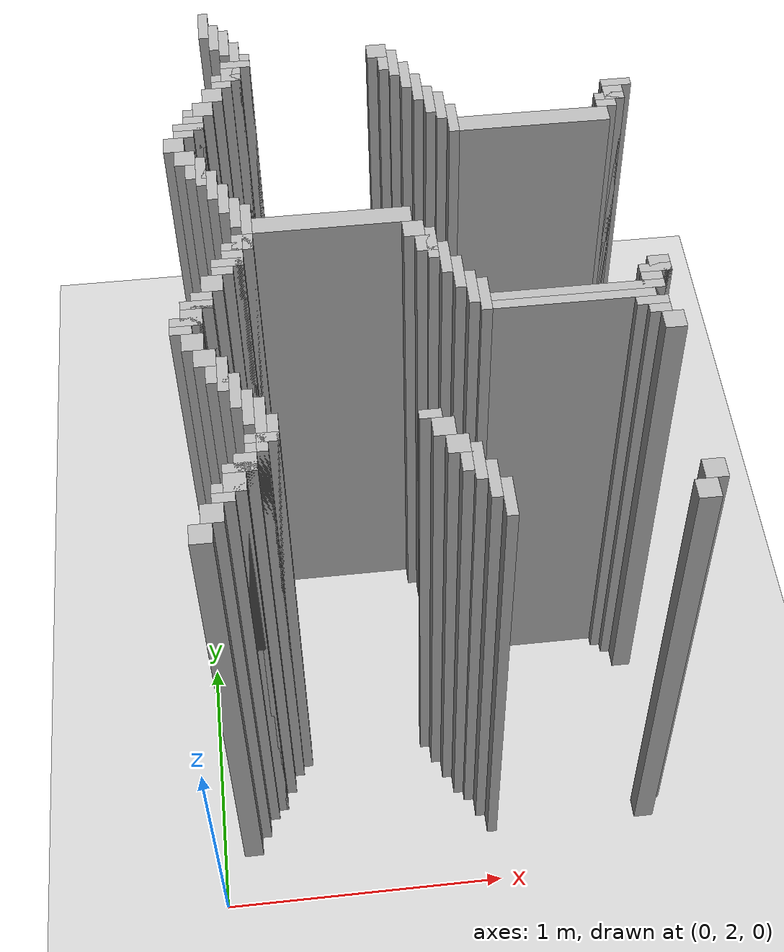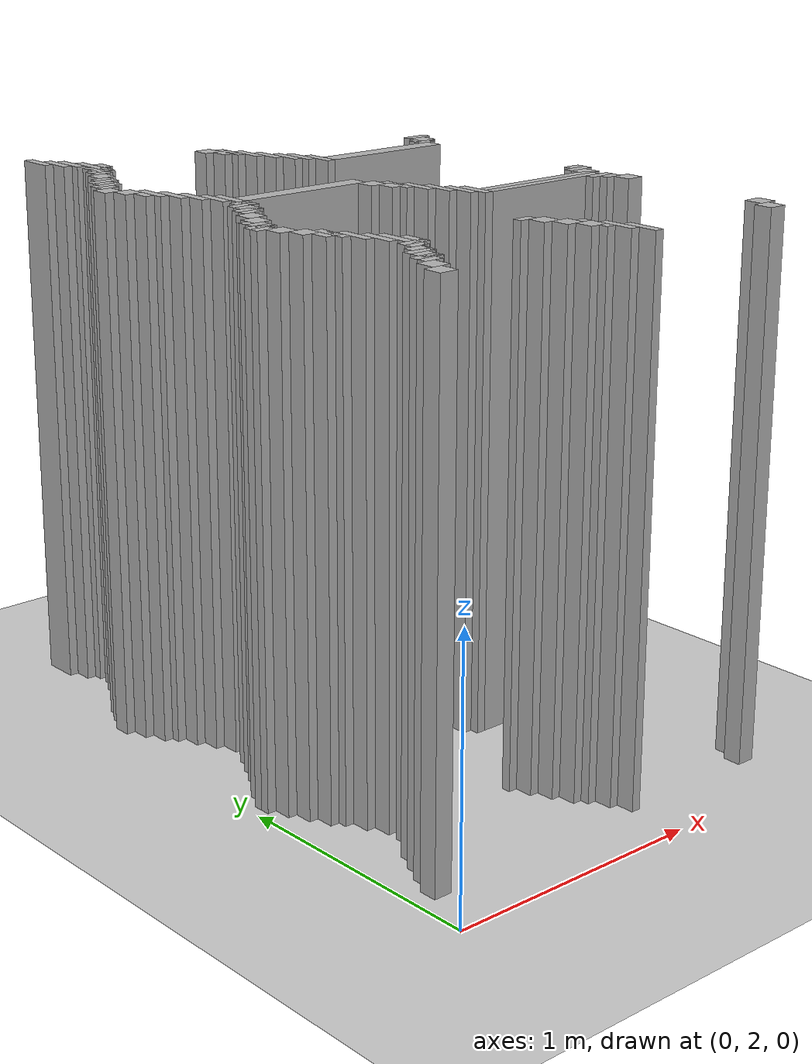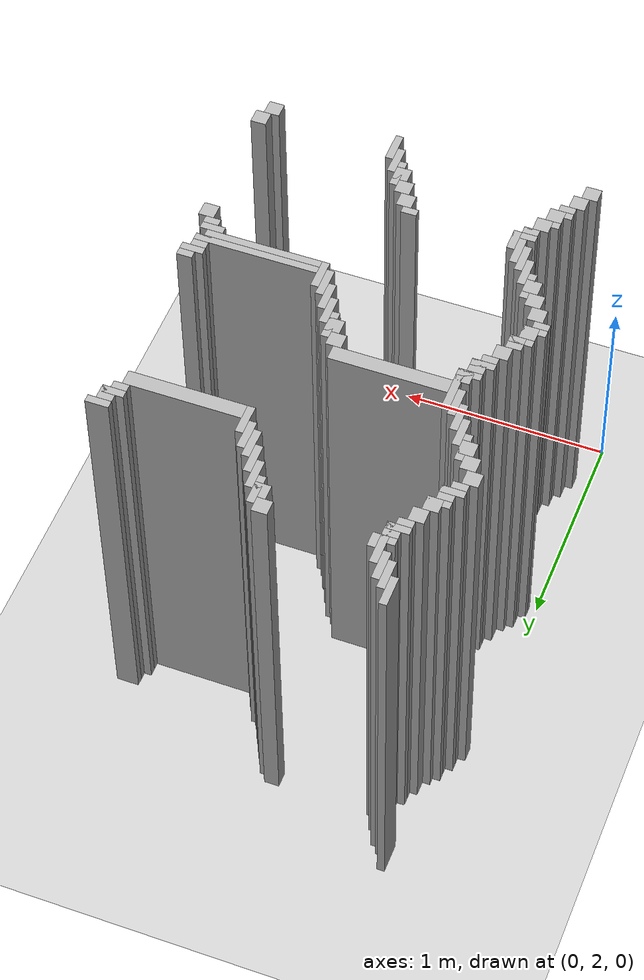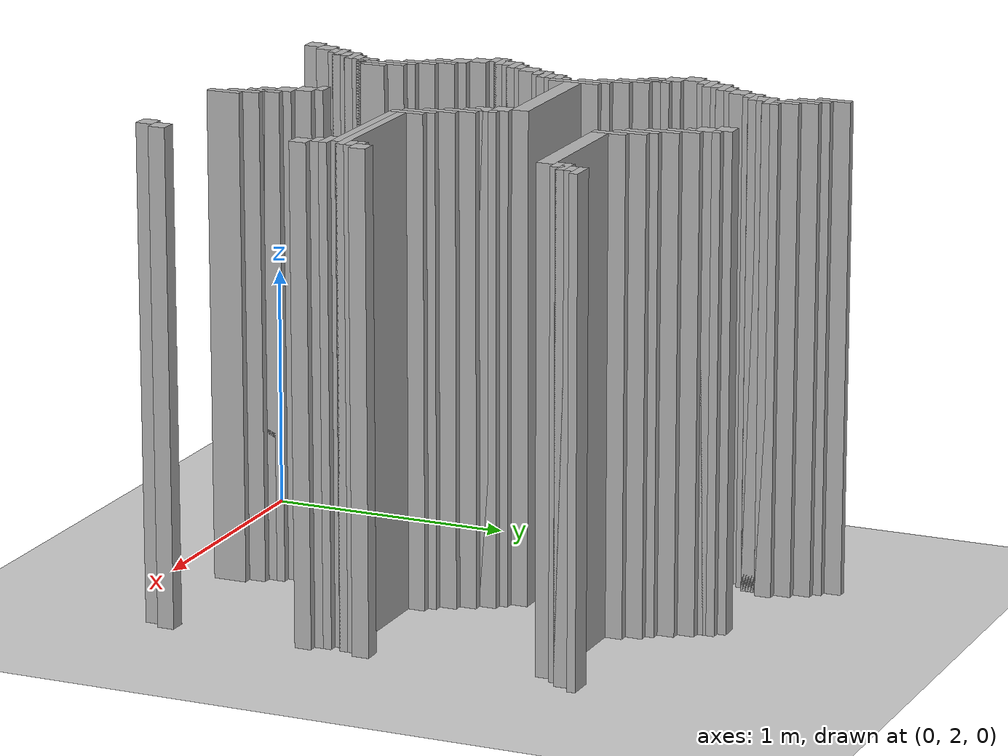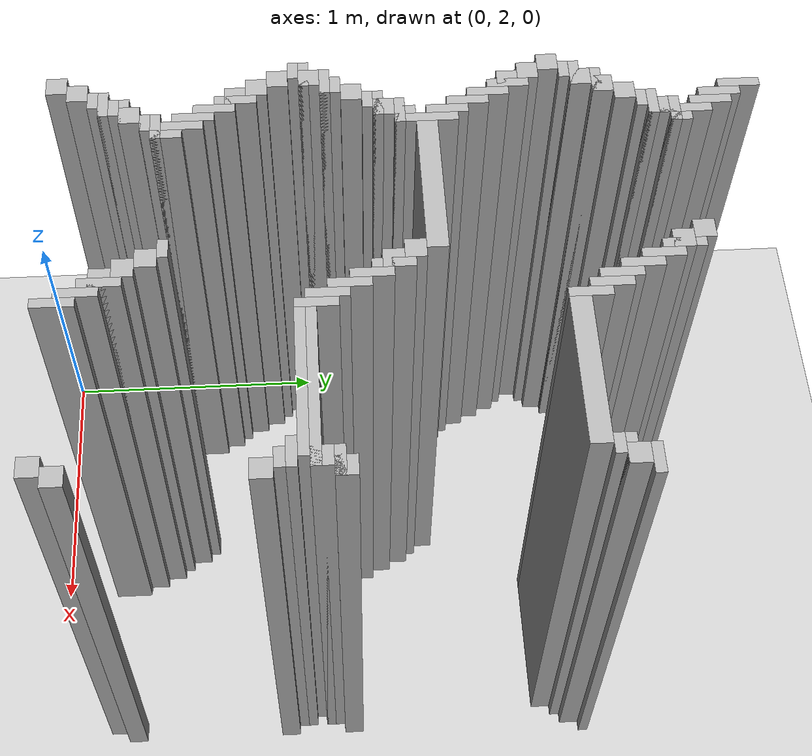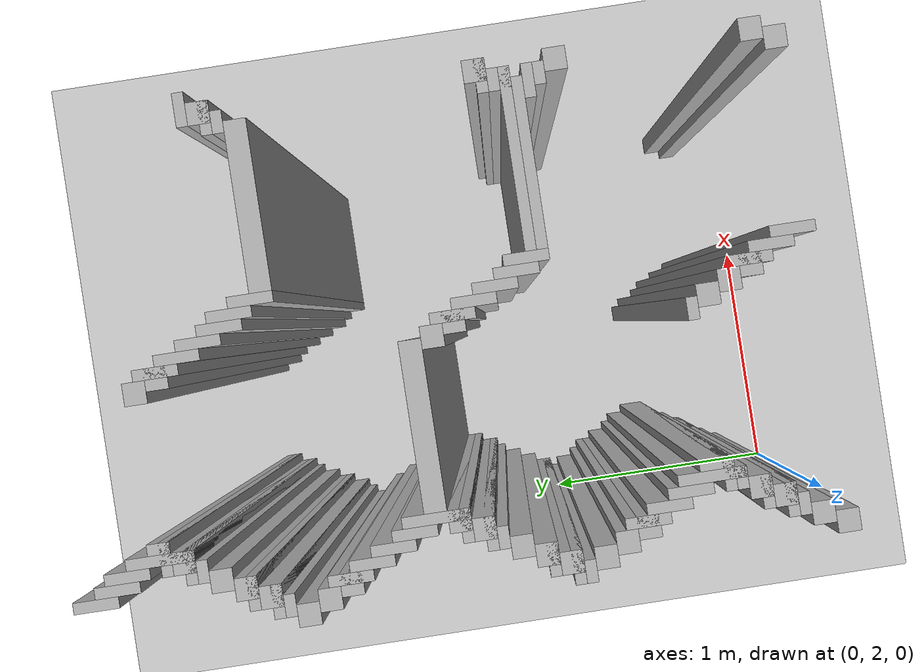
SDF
<sdf version="1.6">
 <world name="slam_world">
  <model name="ground_plane">
   <static>true</static>
   <link name="link">
    <collision name="collision">
     <geometry><plane><normal>0 0 1</normal><size>100 100</size></plane></geometry>
    </collision>
    <visual name="visual">
     <geometry><plane><normal>0 0 1</normal><size>100 100</size></plane></geometry>
     <material>
      <ambient>0.8 0.8 0.8 1</ambient>
      <diffuse>0.8 0.8 0.8 1</diffuse>
      <specular>0.8 0.8 0.8 1</specular>
     </material>
    </visual>
   </link>
  </model>
  <model name="wall_4281">
   <static>true</static>
   <pose>0.191415313225058 4.489559164733178 1.0 0 0 0</pose>
   <link name="link">
    <collision name="collision">
     <geometry><box><size>0.03480278422273782 0.13921113689095127 2.0</size></box></geometry>
    </collision>
    <visual name="visual">
     <geometry><box><size>0.03480278422273782 0.13921113689095127 2.0</size></box></geometry>
     <material><ambient>0.5 0.5 0.5 1</ambient><diffuse>0.7 0.7 0.7 1</diffuse></material>
    </visual>
   </link>
  </model>
  <model name="wall_4292">
   <static>true</static>
   <pose>0.2262180974477958 4.419953596287703 1.0 0 0 0</pose>
   <link name="link">
    <collision name="collision">
     <geometry><box><size>0.03480278422273782 0.13921113689095127 2.0</size></box></geometry>
    </collision>
    <visual name="visual">
     <geometry><box><size>0.03480278422273782 0.13921113689095127 2.0</size></box></geometry>
     <material><ambient>0.5 0.5 0.5 1</ambient><diffuse>0.7 0.7 0.7 1</diffuse></material>
    </visual>
   </link>
  </model>
  <model name="wall_4303">
   <static>true</static>
   <pose>0.2610208816705336 4.385150812064965 1.0 0 0 0</pose>
   <link name="link">
    <collision name="collision">
     <geometry><box><size>0.03480278422273782 0.13921113689095127 2.0</size></box></geometry>
    </collision>
    <visual name="visual">
     <geometry><box><size>0.03480278422273782 0.13921113689095127 2.0</size></box></geometry>
     <material><ambient>0.5 0.5 0.5 1</ambient><diffuse>0.7 0.7 0.7 1</diffuse></material>
    </visual>
   </link>
  </model>
  <model name="wall_4318">
   <static>true</static>
   <pose>0.29582366589327147 4.280742459396752 1.0 0 0 0</pose>
   <link name="link">
    <collision name="collision">
     <geometry><box><size>0.03480278422273782 0.2088167053364269 2.0</size></box></geometry>
    </collision>
    <visual name="visual">
     <geometry><box><size>0.03480278422273782 0.2088167053364269 2.0</size></box></geometry>
     <material><ambient>0.5 0.5 0.5 1</ambient><diffuse>0.7 0.7 0.7 1</diffuse></material>
    </visual>
   </link>
  </model>
  <model name="wall_4333">
   <static>true</static>
   <pose>0.3306264501160093 4.280742459396752 1.0 0 0 0</pose>
   <link name="link">
    <collision name="collision">
     <geometry><box><size>0.03480278422273782 0.06960556844547564 2.0</size></box></geometry>
    </collision>
    <visual name="visual">
     <geometry><box><size>0.03480278422273782 0.06960556844547564 2.0</size></box></geometry>
     <material><ambient>0.5 0.5 0.5 1</ambient><diffuse>0.7 0.7 0.7 1</diffuse></material>
    </visual>
   </link>
  </model>
  <model name="wall_4334">
   <static>true</static>
   <pose>0.8004640371229698 4.280742459396752 1.0 0 0 0</pose>
   <link name="link">
    <collision name="collision">
     <geometry><box><size>0.06960556844547564 0.06960556844547564 2.0</size></box></geometry>
    </collision>
    <visual name="visual">
     <geometry><box><size>0.06960556844547564 0.06960556844547564 2.0</size></box></geometry>
     <material><ambient>0.5 0.5 0.5 1</ambient><diffuse>0.7 0.7 0.7 1</diffuse></material>
    </visual>
   </link>
  </model>
  <model name="wall_4345">
   <static>true</static>
   <pose>0.29582366589327147 4.263341067285383 1.0 0 0 0</pose>
   <link name="link">
    <collision name="collision">
     <geometry><box><size>0.10440835266821345 0.03480278422273782 2.0</size></box></geometry>
    </collision>
    <visual name="visual">
     <geometry><box><size>0.10440835266821345 0.03480278422273782 2.0</size></box></geometry>
     <material><ambient>0.5 0.5 0.5 1</ambient><diffuse>0.7 0.7 0.7 1</diffuse></material>
    </visual>
   </link>
  </model>
  <model name="wall_4346">
   <static>true</static>
   <pose>0.8526682134570766 4.211136890951276 1.0 0 0 0</pose>
   <link name="link">
    <collision name="collision">
     <geometry><box><size>0.03480278422273782 0.13921113689095127 2.0</size></box></geometry>
    </collision>
    <visual name="visual">
     <geometry><box><size>0.03480278422273782 0.13921113689095127 2.0</size></box></geometry>
     <material><ambient>0.5 0.5 0.5 1</ambient><diffuse>0.7 0.7 0.7 1</diffuse></material>
    </visual>
   </link>
  </model>
  <model name="wall_4357">
   <static>true</static>
   <pose>0.27842227378190254 4.211136890951276 1.0 0 0 0</pose>
   <link name="link">
    <collision name="collision">
     <geometry><box><size>0.06960556844547564 0.06960556844547564 2.0</size></box></geometry>
    </collision>
    <visual name="visual">
     <geometry><box><size>0.06960556844547564 0.06960556844547564 2.0</size></box></geometry>
     <material><ambient>0.5 0.5 0.5 1</ambient><diffuse>0.7 0.7 0.7 1</diffuse></material>
    </visual>
   </link>
  </model>
  <model name="wall_4358">
   <static>true</static>
   <pose>0.8352668213457076 4.211136890951276 1.0 0 0 0</pose>
   <link name="link">
    <collision name="collision">
     <geometry><box><size>0.06960556844547564 0.06960556844547564 2.0</size></box></geometry>
    </collision>
    <visual name="visual">
     <geometry><box><size>0.06960556844547564 0.06960556844547564 2.0</size></box></geometry>
     <material><ambient>0.5 0.5 0.5 1</ambient><diffuse>0.7 0.7 0.7 1</diffuse></material>
    </visual>
   </link>
  </model>
  <model name="wall_4373">
   <static>true</static>
   <pose>0.2610208816705336 4.193735498839907 1.0 0 0 0</pose>
   <link name="link">
    <collision name="collision">
     <geometry><box><size>0.10440835266821345 0.03480278422273782 2.0</size></box></geometry>
    </collision>
    <visual name="visual">
     <geometry><box><size>0.10440835266821345 0.03480278422273782 2.0</size></box></geometry>
     <material><ambient>0.5 0.5 0.5 1</ambient><diffuse>0.7 0.7 0.7 1</diffuse></material>
    </visual>
   </link>
  </model>
  <model name="wall_4374">
   <static>true</static>
   <pose>0.8874709976798143 4.1415313225058 1.0 0 0 0</pose>
   <link name="link">
    <collision name="collision">
     <geometry><box><size>0.03480278422273782 0.13921113689095127 2.0</size></box></geometry>
    </collision>
    <visual name="visual">
     <geometry><box><size>0.03480278422273782 0.13921113689095127 2.0</size></box></geometry>
     <material><ambient>0.5 0.5 0.5 1</ambient><diffuse>0.7 0.7 0.7 1</diffuse></material>
    </visual>
   </link>
  </model>
  <model name="wall_4389">
   <static>true</static>
   <pose>0.24361948955916474 4.158932714617169 1.0 0 0 0</pose>
   <link name="link">
    <collision name="collision">
     <geometry><box><size>0.06960556844547564 0.03480278422273782 2.0</size></box></geometry>
    </collision>
    <visual name="visual">
     <geometry><box><size>0.06960556844547564 0.03480278422273782 2.0</size></box></geometry>
     <material><ambient>0.5 0.5 0.5 1</ambient><diffuse>0.7 0.7 0.7 1</diffuse></material>
    </visual>
   </link>
  </model>
  <model name="wall_4402">
   <static>true</static>
   <pose>0.2088167053364269 4.106728538283062 1.0 0 0 0</pose>
   <link name="link">
    <collision name="collision">
     <geometry><box><size>0.06960556844547564 0.06960556844547564 2.0</size></box></geometry>
    </collision>
    <visual name="visual">
     <geometry><box><size>0.06960556844547564 0.06960556844547564 2.0</size></box></geometry>
     <material><ambient>0.5 0.5 0.5 1</ambient><diffuse>0.7 0.7 0.7 1</diffuse></material>
    </visual>
   </link>
  </model>
  <model name="wall_4403">
   <static>true</static>
   <pose>0.9222737819025522 4.071925754060325 1.0 0 0 0</pose>
   <link name="link">
    <collision name="collision">
     <geometry><box><size>0.03480278422273782 0.13921113689095127 2.0</size></box></geometry>
    </collision>
    <visual name="visual">
     <geometry><box><size>0.03480278422273782 0.13921113689095127 2.0</size></box></geometry>
     <material><ambient>0.5 0.5 0.5 1</ambient><diffuse>0.7 0.7 0.7 1</diffuse></material>
    </visual>
   </link>
  </model>
  <model name="wall_4418">
   <static>true</static>
   <pose>0.17401392111368907 4.037122969837587 1.0 0 0 0</pose>
   <link name="link">
    <collision name="collision">
     <geometry><box><size>0.06960556844547564 0.06960556844547564 2.0</size></box></geometry>
    </collision>
    <visual name="visual">
     <geometry><box><size>0.06960556844547564 0.06960556844547564 2.0</size></box></geometry>
     <material><ambient>0.5 0.5 0.5 1</ambient><diffuse>0.7 0.7 0.7 1</diffuse></material>
    </visual>
   </link>
  </model>
  <model name="wall_4419">
   <static>true</static>
   <pose>0.95707656612529 4.002320185614849 1.0 0 0 0</pose>
   <link name="link">
    <collision name="collision">
     <geometry><box><size>0.03480278422273782 0.13921113689095127 2.0</size></box></geometry>
    </collision>
    <visual name="visual">
     <geometry><box><size>0.03480278422273782 0.13921113689095127 2.0</size></box></geometry>
     <material><ambient>0.5 0.5 0.5 1</ambient><diffuse>0.7 0.7 0.7 1</diffuse></material>
    </visual>
   </link>
  </model>
  <model name="wall_4434">
   <static>true</static>
   <pose>0.15661252900232017 4.019721577726218 1.0 0 0 0</pose>
   <link name="link">
    <collision name="collision">
     <geometry><box><size>0.10440835266821345 0.03480278422273782 2.0</size></box></geometry>
    </collision>
    <visual name="visual">
     <geometry><box><size>0.10440835266821345 0.03480278422273782 2.0</size></box></geometry>
     <material><ambient>0.5 0.5 0.5 1</ambient><diffuse>0.7 0.7 0.7 1</diffuse></material>
    </visual>
   </link>
  </model>
  <model name="wall_4435">
   <static>true</static>
   <pose>0.9918793503480278 3.967517401392111 1.0 0 0 0</pose>
   <link name="link">
    <collision name="collision">
     <geometry><box><size>0.03480278422273782 0.13921113689095127 2.0</size></box></geometry>
    </collision>
    <visual name="visual">
     <geometry><box><size>0.03480278422273782 0.13921113689095127 2.0</size></box></geometry>
     <material><ambient>0.5 0.5 0.5 1</ambient><diffuse>0.7 0.7 0.7 1</diffuse></material>
    </visual>
   </link>
  </model>
  <model name="wall_4436">
   <static>true</static>
   <pose>1.6183294663573085 4.019721577726218 1.0 0 0 0</pose>
   <link name="link">
    <collision name="collision">
     <geometry><box><size>0.10440835266821345 0.03480278422273782 2.0</size></box></geometry>
    </collision>
    <visual name="visual">
     <geometry><box><size>0.10440835266821345 0.03480278422273782 2.0</size></box></geometry>
     <material><ambient>0.5 0.5 0.5 1</ambient><diffuse>0.7 0.7 0.7 1</diffuse></material>
    </visual>
   </link>
  </model>
  <model name="wall_4450">
   <static>true</static>
   <pose>0.13921113689095127 3.967517401392111 1.0 0 0 0</pose>
   <link name="link">
    <collision name="collision">
     <geometry><box><size>0.06960556844547564 0.06960556844547564 2.0</size></box></geometry>
    </collision>
    <visual name="visual">
     <geometry><box><size>0.06960556844547564 0.06960556844547564 2.0</size></box></geometry>
     <material><ambient>0.5 0.5 0.5 1</ambient><diffuse>0.7 0.7 0.7 1</diffuse></material>
    </visual>
   </link>
  </model>
  <model name="wall_4451">
   <static>true</static>
   <pose>1.6009280742459395 3.967517401392111 1.0 0 0 0</pose>
   <link name="link">
    <collision name="collision">
     <geometry><box><size>0.06960556844547564 0.06960556844547564 2.0</size></box></geometry>
    </collision>
    <visual name="visual">
     <geometry><box><size>0.06960556844547564 0.06960556844547564 2.0</size></box></geometry>
     <material><ambient>0.5 0.5 0.5 1</ambient><diffuse>0.7 0.7 0.7 1</diffuse></material>
    </visual>
   </link>
  </model>
  <model name="wall_4459">
   <static>true</static>
   <pose>0.12180974477958237 3.9501160092807424 1.0 0 0 0</pose>
   <link name="link">
    <collision name="collision">
     <geometry><box><size>0.10440835266821345 0.03480278422273782 2.0</size></box></geometry>
    </collision>
    <visual name="visual">
     <geometry><box><size>0.10440835266821345 0.03480278422273782 2.0</size></box></geometry>
     <material><ambient>0.5 0.5 0.5 1</ambient><diffuse>0.7 0.7 0.7 1</diffuse></material>
    </visual>
   </link>
  </model>
  <model name="wall_4460">
   <static>true</static>
   <pose>1.0266821345707655 3.897911832946636 1.0 0 0 0</pose>
   <link name="link">
    <collision name="collision">
     <geometry><box><size>0.03480278422273782 0.13921113689095127 2.0</size></box></geometry>
    </collision>
    <visual name="visual">
     <geometry><box><size>0.03480278422273782 0.13921113689095127 2.0</size></box></geometry>
     <material><ambient>0.5 0.5 0.5 1</ambient><diffuse>0.7 0.7 0.7 1</diffuse></material>
    </visual>
   </link>
  </model>
  <model name="wall_4461">
   <static>true</static>
   <pose>1.5835266821345706 3.9501160092807424 1.0 0 0 0</pose>
   <link name="link">
    <collision name="collision">
     <geometry><box><size>0.10440835266821345 0.03480278422273782 2.0</size></box></geometry>
    </collision>
    <visual name="visual">
     <geometry><box><size>0.10440835266821345 0.03480278422273782 2.0</size></box></geometry>
     <material><ambient>0.5 0.5 0.5 1</ambient><diffuse>0.7 0.7 0.7 1</diffuse></material>
    </visual>
   </link>
  </model>
  <model name="wall_4475">
   <static>true</static>
   <pose>0.10440835266821345 3.9153132250580045 1.0 0 0 0</pose>
   <link name="link">
    <collision name="collision">
     <geometry><box><size>0.06960556844547564 0.03480278422273782 2.0</size></box></geometry>
    </collision>
    <visual name="visual">
     <geometry><box><size>0.06960556844547564 0.03480278422273782 2.0</size></box></geometry>
     <material><ambient>0.5 0.5 0.5 1</ambient><diffuse>0.7 0.7 0.7 1</diffuse></material>
    </visual>
   </link>
  </model>
  <model name="wall_4476">
   <static>true</static>
   <pose>1.5661252900232019 3.9153132250580045 1.0 0 0 0</pose>
   <link name="link">
    <collision name="collision">
     <geometry><box><size>0.06960556844547564 0.03480278422273782 2.0</size></box></geometry>
    </collision>
    <visual name="visual">
     <geometry><box><size>0.06960556844547564 0.03480278422273782 2.0</size></box></geometry>
     <material><ambient>0.5 0.5 0.5 1</ambient><diffuse>0.7 0.7 0.7 1</diffuse></material>
    </visual>
   </link>
  </model>
  <model name="wall_4484">
   <static>true</static>
   <pose>0.06960556844547564 3.863109048723898 1.0 0 0 0</pose>
   <link name="link">
    <collision name="collision">
     <geometry><box><size>0.06960556844547564 0.06960556844547564 2.0</size></box></geometry>
    </collision>
    <visual name="visual">
     <geometry><box><size>0.06960556844547564 0.06960556844547564 2.0</size></box></geometry>
     <material><ambient>0.5 0.5 0.5 1</ambient><diffuse>0.7 0.7 0.7 1</diffuse></material>
    </visual>
   </link>
  </model>
  <model name="wall_4485">
   <static>true</static>
   <pose>1.3051044083526682 3.863109048723898 1.0 0 0 0</pose>
   <link name="link">
    <collision name="collision">
     <geometry><box><size>0.5220417633410672 0.06960556844547564 2.0</size></box></geometry>
    </collision>
    <visual name="visual">
     <geometry><box><size>0.5220417633410672 0.06960556844547564 2.0</size></box></geometry>
     <material><ambient>0.5 0.5 0.5 1</ambient><diffuse>0.7 0.7 0.7 1</diffuse></material>
    </visual>
   </link>
  </model>
  <model name="wall_4500">
   <static>true</static>
   <pose>0.10440835266821345 3.793503480278422 1.0 0 0 0</pose>
   <link name="link">
    <collision name="collision">
     <geometry><box><size>0.06960556844547564 0.06960556844547564 2.0</size></box></geometry>
    </collision>
    <visual name="visual">
     <geometry><box><size>0.06960556844547564 0.06960556844547564 2.0</size></box></geometry>
     <material><ambient>0.5 0.5 0.5 1</ambient><diffuse>0.7 0.7 0.7 1</diffuse></material>
    </visual>
   </link>
  </model>
  <model name="wall_4511">
   <static>true</static>
   <pose>0.15661252900232017 3.7238979118329465 1.0 0 0 0</pose>
   <link name="link">
    <collision name="collision">
     <geometry><box><size>0.03480278422273782 0.13921113689095127 2.0</size></box></geometry>
    </collision>
    <visual name="visual">
     <geometry><box><size>0.03480278422273782 0.13921113689095127 2.0</size></box></geometry>
     <material><ambient>0.5 0.5 0.5 1</ambient><diffuse>0.7 0.7 0.7 1</diffuse></material>
    </visual>
   </link>
  </model>
  <model name="wall_4522">
   <static>true</static>
   <pose>0.13921113689095127 3.7238979118329465 1.0 0 0 0</pose>
   <link name="link">
    <collision name="collision">
     <geometry><box><size>0.06960556844547564 0.06960556844547564 2.0</size></box></geometry>
    </collision>
    <visual name="visual">
     <geometry><box><size>0.06960556844547564 0.06960556844547564 2.0</size></box></geometry>
     <material><ambient>0.5 0.5 0.5 1</ambient><diffuse>0.7 0.7 0.7 1</diffuse></material>
    </visual>
   </link>
  </model>
  <model name="wall_4533">
   <static>true</static>
   <pose>0.191415313225058 3.6542923433874708 1.0 0 0 0</pose>
   <link name="link">
    <collision name="collision">
     <geometry><box><size>0.03480278422273782 0.13921113689095127 2.0</size></box></geometry>
    </collision>
    <visual name="visual">
     <geometry><box><size>0.03480278422273782 0.13921113689095127 2.0</size></box></geometry>
     <material><ambient>0.5 0.5 0.5 1</ambient><diffuse>0.7 0.7 0.7 1</diffuse></material>
    </visual>
   </link>
  </model>
  <model name="wall_4548">
   <static>true</static>
   <pose>0.2262180974477958 3.584686774941995 1.0 0 0 0</pose>
   <link name="link">
    <collision name="collision">
     <geometry><box><size>0.03480278422273782 0.13921113689095127 2.0</size></box></geometry>
    </collision>
    <visual name="visual">
     <geometry><box><size>0.03480278422273782 0.13921113689095127 2.0</size></box></geometry>
     <material><ambient>0.5 0.5 0.5 1</ambient><diffuse>0.7 0.7 0.7 1</diffuse></material>
    </visual>
   </link>
  </model>
  <model name="wall_4563">
   <static>true</static>
   <pose>0.2610208816705336 3.51508120649652 1.0 0 0 0</pose>
   <link name="link">
    <collision name="collision">
     <geometry><box><size>0.03480278422273782 0.13921113689095127 2.0</size></box></geometry>
    </collision>
    <visual name="visual">
     <geometry><box><size>0.03480278422273782 0.13921113689095127 2.0</size></box></geometry>
     <material><ambient>0.5 0.5 0.5 1</ambient><diffuse>0.7 0.7 0.7 1</diffuse></material>
    </visual>
   </link>
  </model>
  <model name="wall_4574">
   <static>true</static>
   <pose>0.29582366589327147 3.445475638051044 1.0 0 0 0</pose>
   <link name="link">
    <collision name="collision">
     <geometry><box><size>0.03480278422273782 0.2088167053364269 2.0</size></box></geometry>
    </collision>
    <visual name="visual">
     <geometry><box><size>0.03480278422273782 0.2088167053364269 2.0</size></box></geometry>
     <material><ambient>0.5 0.5 0.5 1</ambient><diffuse>0.7 0.7 0.7 1</diffuse></material>
    </visual>
   </link>
  </model>
  <model name="wall_4589">
   <static>true</static>
   <pose>0.574245939675174 3.445475638051044 1.0 0 0 0</pose>
   <link name="link">
    <collision name="collision">
     <geometry><box><size>0.5220417633410672 0.06960556844547564 2.0</size></box></geometry>
    </collision>
    <visual name="visual">
     <geometry><box><size>0.5220417633410672 0.06960556844547564 2.0</size></box></geometry>
     <material><ambient>0.5 0.5 0.5 1</ambient><diffuse>0.7 0.7 0.7 1</diffuse></material>
    </visual>
   </link>
  </model>
  <model name="wall_4608">
   <static>true</static>
   <pose>0.27842227378190254 3.3758700696055683 1.0 0 0 0</pose>
   <link name="link">
    <collision name="collision">
     <geometry><box><size>0.06960556844547564 0.06960556844547564 2.0</size></box></geometry>
    </collision>
    <visual name="visual">
     <geometry><box><size>0.06960556844547564 0.06960556844547564 2.0</size></box></geometry>
     <material><ambient>0.5 0.5 0.5 1</ambient><diffuse>0.7 0.7 0.7 1</diffuse></material>
    </visual>
   </link>
  </model>
  <model name="wall_4609">
   <static>true</static>
   <pose>0.8352668213457076 3.3758700696055683 1.0 0 0 0</pose>
   <link name="link">
    <collision name="collision">
     <geometry><box><size>0.06960556844547564 0.06960556844547564 2.0</size></box></geometry>
    </collision>
    <visual name="visual">
     <geometry><box><size>0.06960556844547564 0.06960556844547564 2.0</size></box></geometry>
     <material><ambient>0.5 0.5 0.5 1</ambient><diffuse>0.7 0.7 0.7 1</diffuse></material>
    </visual>
   </link>
  </model>
  <model name="wall_4625">
   <static>true</static>
   <pose>0.2610208816705336 3.358468677494199 1.0 0 0 0</pose>
   <link name="link">
    <collision name="collision">
     <geometry><box><size>0.10440835266821345 0.03480278422273782 2.0</size></box></geometry>
    </collision>
    <visual name="visual">
     <geometry><box><size>0.10440835266821345 0.03480278422273782 2.0</size></box></geometry>
     <material><ambient>0.5 0.5 0.5 1</ambient><diffuse>0.7 0.7 0.7 1</diffuse></material>
    </visual>
   </link>
  </model>
  <model name="wall_4626">
   <static>true</static>
   <pose>0.8874709976798143 3.3062645011600926 1.0 0 0 0</pose>
   <link name="link">
    <collision name="collision">
     <geometry><box><size>0.03480278422273782 0.13921113689095127 2.0</size></box></geometry>
    </collision>
    <visual name="visual">
     <geometry><box><size>0.03480278422273782 0.13921113689095127 2.0</size></box></geometry>
     <material><ambient>0.5 0.5 0.5 1</ambient><diffuse>0.7 0.7 0.7 1</diffuse></material>
    </visual>
   </link>
  </model>
  <model name="wall_4642">
   <static>true</static>
   <pose>0.24361948955916474 3.3062645011600926 1.0 0 0 0</pose>
   <link name="link">
    <collision name="collision">
     <geometry><box><size>0.06960556844547564 0.06960556844547564 2.0</size></box></geometry>
    </collision>
    <visual name="visual">
     <geometry><box><size>0.06960556844547564 0.06960556844547564 2.0</size></box></geometry>
     <material><ambient>0.5 0.5 0.5 1</ambient><diffuse>0.7 0.7 0.7 1</diffuse></material>
    </visual>
   </link>
  </model>
  <model name="wall_4643">
   <static>true</static>
   <pose>0.8700696055684455 3.3062645011600926 1.0 0 0 0</pose>
   <link name="link">
    <collision name="collision">
     <geometry><box><size>0.06960556844547564 0.06960556844547564 2.0</size></box></geometry>
    </collision>
    <visual name="visual">
     <geometry><box><size>0.06960556844547564 0.06960556844547564 2.0</size></box></geometry>
     <material><ambient>0.5 0.5 0.5 1</ambient><diffuse>0.7 0.7 0.7 1</diffuse></material>
    </visual>
   </link>
  </model>
  <model name="wall_4659">
   <static>true</static>
   <pose>0.2262180974477958 3.288863109048724 1.0 0 0 0</pose>
   <link name="link">
    <collision name="collision">
     <geometry><box><size>0.10440835266821345 0.03480278422273782 2.0</size></box></geometry>
    </collision>
    <visual name="visual">
     <geometry><box><size>0.10440835266821345 0.03480278422273782 2.0</size></box></geometry>
     <material><ambient>0.5 0.5 0.5 1</ambient><diffuse>0.7 0.7 0.7 1</diffuse></material>
    </visual>
   </link>
  </model>
  <model name="wall_4660">
   <static>true</static>
   <pose>0.9222737819025522 3.236658932714617 1.0 0 0 0</pose>
   <link name="link">
    <collision name="collision">
     <geometry><box><size>0.03480278422273782 0.13921113689095127 2.0</size></box></geometry>
    </collision>
    <visual name="visual">
     <geometry><box><size>0.03480278422273782 0.13921113689095127 2.0</size></box></geometry>
     <material><ambient>0.5 0.5 0.5 1</ambient><diffuse>0.7 0.7 0.7 1</diffuse></material>
    </visual>
   </link>
  </model>
  <model name="wall_4676">
   <static>true</static>
   <pose>0.2088167053364269 3.254060324825986 1.0 0 0 0</pose>
   <link name="link">
    <collision name="collision">
     <geometry><box><size>0.06960556844547564 0.03480278422273782 2.0</size></box></geometry>
    </collision>
    <visual name="visual">
     <geometry><box><size>0.06960556844547564 0.03480278422273782 2.0</size></box></geometry>
     <material><ambient>0.5 0.5 0.5 1</ambient><diffuse>0.7 0.7 0.7 1</diffuse></material>
    </visual>
   </link>
  </model>
  <model name="wall_4684">
   <static>true</static>
   <pose>0.17401392111368907 3.201856148491879 1.0 0 0 0</pose>
   <link name="link">
    <collision name="collision">
     <geometry><box><size>0.06960556844547564 0.06960556844547564 2.0</size></box></geometry>
    </collision>
    <visual name="visual">
     <geometry><box><size>0.06960556844547564 0.06960556844547564 2.0</size></box></geometry>
     <material><ambient>0.5 0.5 0.5 1</ambient><diffuse>0.7 0.7 0.7 1</diffuse></material>
    </visual>
   </link>
  </model>
  <model name="wall_4685">
   <static>true</static>
   <pose>0.95707656612529 3.167053364269141 1.0 0 0 0</pose>
   <link name="link">
    <collision name="collision">
     <geometry><box><size>0.03480278422273782 0.13921113689095127 2.0</size></box></geometry>
    </collision>
    <visual name="visual">
     <geometry><box><size>0.03480278422273782 0.13921113689095127 2.0</size></box></geometry>
     <material><ambient>0.5 0.5 0.5 1</ambient><diffuse>0.7 0.7 0.7 1</diffuse></material>
    </visual>
   </link>
  </model>
  <model name="wall_4701">
   <static>true</static>
   <pose>0.13921113689095127 3.1322505800464038 1.0 0 0 0</pose>
   <link name="link">
    <collision name="collision">
     <geometry><box><size>0.06960556844547564 0.06960556844547564 2.0</size></box></geometry>
    </collision>
    <visual name="visual">
     <geometry><box><size>0.06960556844547564 0.06960556844547564 2.0</size></box></geometry>
     <material><ambient>0.5 0.5 0.5 1</ambient><diffuse>0.7 0.7 0.7 1</diffuse></material>
    </visual>
   </link>
  </model>
  <model name="wall_4702">
   <static>true</static>
   <pose>0.9918793503480278 3.097447795823666 1.0 0 0 0</pose>
   <link name="link">
    <collision name="collision">
     <geometry><box><size>0.03480278422273782 0.13921113689095127 2.0</size></box></geometry>
    </collision>
    <visual name="visual">
     <geometry><box><size>0.03480278422273782 0.13921113689095127 2.0</size></box></geometry>
     <material><ambient>0.5 0.5 0.5 1</ambient><diffuse>0.7 0.7 0.7 1</diffuse></material>
    </visual>
   </link>
  </model>
  <model name="wall_4703">
   <static>true</static>
   <pose>1.6009280742459395 3.1322505800464038 1.0 0 0 0</pose>
   <link name="link">
    <collision name="collision">
     <geometry><box><size>0.06960556844547564 0.06960556844547564 2.0</size></box></geometry>
    </collision>
    <visual name="visual">
     <geometry><box><size>0.06960556844547564 0.06960556844547564 2.0</size></box></geometry>
     <material><ambient>0.5 0.5 0.5 1</ambient><diffuse>0.7 0.7 0.7 1</diffuse></material>
    </visual>
   </link>
  </model>
  <model name="wall_4718">
   <static>true</static>
   <pose>0.12180974477958237 3.1148491879350346 1.0 0 0 0</pose>
   <link name="link">
    <collision name="collision">
     <geometry><box><size>0.10440835266821345 0.03480278422273782 2.0</size></box></geometry>
    </collision>
    <visual name="visual">
     <geometry><box><size>0.10440835266821345 0.03480278422273782 2.0</size></box></geometry>
     <material><ambient>0.5 0.5 0.5 1</ambient><diffuse>0.7 0.7 0.7 1</diffuse></material>
    </visual>
   </link>
  </model>
  <model name="wall_4719">
   <static>true</static>
   <pose>1.0266821345707655 3.062645011600928 1.0 0 0 0</pose>
   <link name="link">
    <collision name="collision">
     <geometry><box><size>0.03480278422273782 0.13921113689095127 2.0</size></box></geometry>
    </collision>
    <visual name="visual">
     <geometry><box><size>0.03480278422273782 0.13921113689095127 2.0</size></box></geometry>
     <material><ambient>0.5 0.5 0.5 1</ambient><diffuse>0.7 0.7 0.7 1</diffuse></material>
    </visual>
   </link>
  </model>
  <model name="wall_4720">
   <static>true</static>
   <pose>1.5835266821345706 3.1148491879350346 1.0 0 0 0</pose>
   <link name="link">
    <collision name="collision">
     <geometry><box><size>0.10440835266821345 0.03480278422273782 2.0</size></box></geometry>
    </collision>
    <visual name="visual">
     <geometry><box><size>0.10440835266821345 0.03480278422273782 2.0</size></box></geometry>
     <material><ambient>0.5 0.5 0.5 1</ambient><diffuse>0.7 0.7 0.7 1</diffuse></material>
    </visual>
   </link>
  </model>
  <model name="wall_4735">
   <static>true</static>
   <pose>0.10440835266821345 3.062645011600928 1.0 0 0 0</pose>
   <link name="link">
    <collision name="collision">
     <geometry><box><size>0.06960556844547564 0.06960556844547564 2.0</size></box></geometry>
    </collision>
    <visual name="visual">
     <geometry><box><size>0.06960556844547564 0.06960556844547564 2.0</size></box></geometry>
     <material><ambient>0.5 0.5 0.5 1</ambient><diffuse>0.7 0.7 0.7 1</diffuse></material>
    </visual>
   </link>
  </model>
  <model name="wall_4736">
   <static>true</static>
   <pose>1.5661252900232019 3.062645011600928 1.0 0 0 0</pose>
   <link name="link">
    <collision name="collision">
     <geometry><box><size>0.06960556844547564 0.06960556844547564 2.0</size></box></geometry>
    </collision>
    <visual name="visual">
     <geometry><box><size>0.06960556844547564 0.06960556844547564 2.0</size></box></geometry>
     <material><ambient>0.5 0.5 0.5 1</ambient><diffuse>0.7 0.7 0.7 1</diffuse></material>
    </visual>
   </link>
  </model>
  <model name="wall_4743">
   <static>true</static>
   <pose>0.08700696055684454 3.045243619489559 1.0 0 0 0</pose>
   <link name="link">
    <collision name="collision">
     <geometry><box><size>0.10440835266821345 0.03480278422273782 2.0</size></box></geometry>
    </collision>
    <visual name="visual">
     <geometry><box><size>0.10440835266821345 0.03480278422273782 2.0</size></box></geometry>
     <material><ambient>0.5 0.5 0.5 1</ambient><diffuse>0.7 0.7 0.7 1</diffuse></material>
    </visual>
   </link>
  </model>
  <model name="wall_4744">
   <static>true</static>
   <pose>1.322505800464037 3.045243619489559 1.0 0 0 0</pose>
   <link name="link">
    <collision name="collision">
     <geometry><box><size>0.5568445475638051 0.03480278422273782 2.0</size></box></geometry>
    </collision>
    <visual name="visual">
     <geometry><box><size>0.5568445475638051 0.03480278422273782 2.0</size></box></geometry>
     <material><ambient>0.5 0.5 0.5 1</ambient><diffuse>0.7 0.7 0.7 1</diffuse></material>
    </visual>
   </link>
  </model>
  <model name="wall_4756">
   <static>true</static>
   <pose>0.06960556844547564 3.010440835266821 1.0 0 0 0</pose>
   <link name="link">
    <collision name="collision">
     <geometry><box><size>0.06960556844547564 0.03480278422273782 2.0</size></box></geometry>
    </collision>
    <visual name="visual">
     <geometry><box><size>0.06960556844547564 0.03480278422273782 2.0</size></box></geometry>
     <material><ambient>0.5 0.5 0.5 1</ambient><diffuse>0.7 0.7 0.7 1</diffuse></material>
    </visual>
   </link>
  </model>
  <model name="wall_4757">
   <static>true</static>
   <pose>1.3051044083526682 3.010440835266821 1.0 0 0 0</pose>
   <link name="link">
    <collision name="collision">
     <geometry><box><size>0.5220417633410672 0.03480278422273782 2.0</size></box></geometry>
    </collision>
    <visual name="visual">
     <geometry><box><size>0.5220417633410672 0.03480278422273782 2.0</size></box></geometry>
     <material><ambient>0.5 0.5 0.5 1</ambient><diffuse>0.7 0.7 0.7 1</diffuse></material>
    </visual>
   </link>
  </model>
  <model name="wall_4764">
   <static>true</static>
   <pose>0.10440835266821345 2.9582366589327145 1.0 0 0 0</pose>
   <link name="link">
    <collision name="collision">
     <geometry><box><size>0.06960556844547564 0.06960556844547564 2.0</size></box></geometry>
    </collision>
    <visual name="visual">
     <geometry><box><size>0.06960556844547564 0.06960556844547564 2.0</size></box></geometry>
     <material><ambient>0.5 0.5 0.5 1</ambient><diffuse>0.7 0.7 0.7 1</diffuse></material>
    </visual>
   </link>
  </model>
  <model name="wall_4765">
   <static>true</static>
   <pose>1.548723897911833 2.975638051044083 1.0 0 0 0</pose>
   <link name="link">
    <collision name="collision">
     <geometry><box><size>0.10440835266821345 0.03480278422273782 2.0</size></box></geometry>
    </collision>
    <visual name="visual">
     <geometry><box><size>0.10440835266821345 0.03480278422273782 2.0</size></box></geometry>
     <material><ambient>0.5 0.5 0.5 1</ambient><diffuse>0.7 0.7 0.7 1</diffuse></material>
    </visual>
   </link>
  </model>
  <model name="wall_4777">
   <static>true</static>
   <pose>1.5661252900232019 2.9408352668213458 1.0 0 0 0</pose>
   <link name="link">
    <collision name="collision">
     <geometry><box><size>0.06960556844547564 0.03480278422273782 2.0</size></box></geometry>
    </collision>
    <visual name="visual">
     <geometry><box><size>0.06960556844547564 0.03480278422273782 2.0</size></box></geometry>
     <material><ambient>0.5 0.5 0.5 1</ambient><diffuse>0.7 0.7 0.7 1</diffuse></material>
    </visual>
   </link>
  </model>
  <model name="wall_4784">
   <static>true</static>
   <pose>0.13921113689095127 2.8886310904872388 1.0 0 0 0</pose>
   <link name="link">
    <collision name="collision">
     <geometry><box><size>0.06960556844547564 0.06960556844547564 2.0</size></box></geometry>
    </collision>
    <visual name="visual">
     <geometry><box><size>0.06960556844547564 0.06960556844547564 2.0</size></box></geometry>
     <material><ambient>0.5 0.5 0.5 1</ambient><diffuse>0.7 0.7 0.7 1</diffuse></material>
    </visual>
   </link>
  </model>
  <model name="wall_4785">
   <static>true</static>
   <pose>1.6009280742459395 2.8886310904872388 1.0 0 0 0</pose>
   <link name="link">
    <collision name="collision">
     <geometry><box><size>0.06960556844547564 0.06960556844547564 2.0</size></box></geometry>
    </collision>
    <visual name="visual">
     <geometry><box><size>0.06960556844547564 0.06960556844547564 2.0</size></box></geometry>
     <material><ambient>0.5 0.5 0.5 1</ambient><diffuse>0.7 0.7 0.7 1</diffuse></material>
    </visual>
   </link>
  </model>
  <model name="wall_4797">
   <static>true</static>
   <pose>0.191415313225058 2.819025522041763 1.0 0 0 0</pose>
   <link name="link">
    <collision name="collision">
     <geometry><box><size>0.03480278422273782 0.13921113689095127 2.0</size></box></geometry>
    </collision>
    <visual name="visual">
     <geometry><box><size>0.03480278422273782 0.13921113689095127 2.0</size></box></geometry>
     <material><ambient>0.5 0.5 0.5 1</ambient><diffuse>0.7 0.7 0.7 1</diffuse></material>
    </visual>
   </link>
  </model>
  <model name="wall_4810">
   <static>true</static>
   <pose>0.17401392111368907 2.819025522041763 1.0 0 0 0</pose>
   <link name="link">
    <collision name="collision">
     <geometry><box><size>0.06960556844547564 0.06960556844547564 2.0</size></box></geometry>
    </collision>
    <visual name="visual">
     <geometry><box><size>0.06960556844547564 0.06960556844547564 2.0</size></box></geometry>
     <material><ambient>0.5 0.5 0.5 1</ambient><diffuse>0.7 0.7 0.7 1</diffuse></material>
    </visual>
   </link>
  </model>
  <model name="wall_4823">
   <static>true</static>
   <pose>0.2262180974477958 2.7494199535962878 1.0 0 0 0</pose>
   <link name="link">
    <collision name="collision">
     <geometry><box><size>0.03480278422273782 0.13921113689095127 2.0</size></box></geometry>
    </collision>
    <visual name="visual">
     <geometry><box><size>0.03480278422273782 0.13921113689095127 2.0</size></box></geometry>
     <material><ambient>0.5 0.5 0.5 1</ambient><diffuse>0.7 0.7 0.7 1</diffuse></material>
    </visual>
   </link>
  </model>
  <model name="wall_4840">
   <static>true</static>
   <pose>0.2610208816705336 2.679814385150812 1.0 0 0 0</pose>
   <link name="link">
    <collision name="collision">
     <geometry><box><size>0.03480278422273782 0.13921113689095127 2.0</size></box></geometry>
    </collision>
    <visual name="visual">
     <geometry><box><size>0.03480278422273782 0.13921113689095127 2.0</size></box></geometry>
     <material><ambient>0.5 0.5 0.5 1</ambient><diffuse>0.7 0.7 0.7 1</diffuse></material>
    </visual>
   </link>
  </model>
  <model name="wall_4853">
   <static>true</static>
   <pose>0.29582366589327147 2.6102088167053363 1.0 0 0 0</pose>
   <link name="link">
    <collision name="collision">
     <geometry><box><size>0.03480278422273782 0.2088167053364269 2.0</size></box></geometry>
    </collision>
    <visual name="visual">
     <geometry><box><size>0.03480278422273782 0.2088167053364269 2.0</size></box></geometry>
     <material><ambient>0.5 0.5 0.5 1</ambient><diffuse>0.7 0.7 0.7 1</diffuse></material>
    </visual>
   </link>
  </model>
  <model name="wall_4870">
   <static>true</static>
   <pose>0.3306264501160093 2.5928074245939676 1.0 0 0 0</pose>
   <link name="link">
    <collision name="collision">
     <geometry><box><size>0.03480278422273782 0.10440835266821345 2.0</size></box></geometry>
    </collision>
    <visual name="visual">
     <geometry><box><size>0.03480278422273782 0.10440835266821345 2.0</size></box></geometry>
     <material><ambient>0.5 0.5 0.5 1</ambient><diffuse>0.7 0.7 0.7 1</diffuse></material>
    </visual>
   </link>
  </model>
  <model name="wall_4884">
   <static>true</static>
   <pose>0.8004640371229698 2.5928074245939676 1.0 0 0 0</pose>
   <link name="link">
    <collision name="collision">
     <geometry><box><size>0.06960556844547564 0.03480278422273782 2.0</size></box></geometry>
    </collision>
    <visual name="visual">
     <geometry><box><size>0.06960556844547564 0.03480278422273782 2.0</size></box></geometry>
     <material><ambient>0.5 0.5 0.5 1</ambient><diffuse>0.7 0.7 0.7 1</diffuse></material>
    </visual>
   </link>
  </model>
  <model name="wall_4895">
   <static>true</static>
   <pose>0.29582366589327147 2.5580046403712298 1.0 0 0 0</pose>
   <link name="link">
    <collision name="collision">
     <geometry><box><size>0.10440835266821345 0.03480278422273782 2.0</size></box></geometry>
    </collision>
    <visual name="visual">
     <geometry><box><size>0.10440835266821345 0.03480278422273782 2.0</size></box></geometry>
     <material><ambient>0.5 0.5 0.5 1</ambient><diffuse>0.7 0.7 0.7 1</diffuse></material>
    </visual>
   </link>
  </model>
  <model name="wall_4896">
   <static>true</static>
   <pose>0.8352668213457076 2.5406032482598606 1.0 0 0 0</pose>
   <link name="link">
    <collision name="collision">
     <geometry><box><size>0.06960556844547564 0.06960556844547564 2.0</size></box></geometry>
    </collision>
    <visual name="visual">
     <geometry><box><size>0.06960556844547564 0.06960556844547564 2.0</size></box></geometry>
     <material><ambient>0.5 0.5 0.5 1</ambient><diffuse>0.7 0.7 0.7 1</diffuse></material>
    </visual>
   </link>
  </model>
  <model name="wall_4912">
   <static>true</static>
   <pose>0.27842227378190254 2.523201856148492 1.0 0 0 0</pose>
   <link name="link">
    <collision name="collision">
     <geometry><box><size>0.06960556844547564 0.03480278422273782 2.0</size></box></geometry>
    </collision>
    <visual name="visual">
     <geometry><box><size>0.06960556844547564 0.03480278422273782 2.0</size></box></geometry>
     <material><ambient>0.5 0.5 0.5 1</ambient><diffuse>0.7 0.7 0.7 1</diffuse></material>
    </visual>
   </link>
  </model>
  <model name="wall_4922">
   <static>true</static>
   <pose>0.24361948955916474 2.470997679814385 1.0 0 0 0</pose>
   <link name="link">
    <collision name="collision">
     <geometry><box><size>0.06960556844547564 0.06960556844547564 2.0</size></box></geometry>
    </collision>
    <visual name="visual">
     <geometry><box><size>0.06960556844547564 0.06960556844547564 2.0</size></box></geometry>
     <material><ambient>0.5 0.5 0.5 1</ambient><diffuse>0.7 0.7 0.7 1</diffuse></material>
    </visual>
   </link>
  </model>
  <model name="wall_4923">
   <static>true</static>
   <pose>0.8700696055684455 2.470997679814385 1.0 0 0 0</pose>
   <link name="link">
    <collision name="collision">
     <geometry><box><size>0.06960556844547564 0.06960556844547564 2.0</size></box></geometry>
    </collision>
    <visual name="visual">
     <geometry><box><size>0.06960556844547564 0.06960556844547564 2.0</size></box></geometry>
     <material><ambient>0.5 0.5 0.5 1</ambient><diffuse>0.7 0.7 0.7 1</diffuse></material>
    </visual>
   </link>
  </model>
  <model name="wall_4939">
   <static>true</static>
   <pose>0.2262180974477958 2.453596287703016 1.0 0 0 0</pose>
   <link name="link">
    <collision name="collision">
     <geometry><box><size>0.10440835266821345 0.03480278422273782 2.0</size></box></geometry>
    </collision>
    <visual name="visual">
     <geometry><box><size>0.10440835266821345 0.03480278422273782 2.0</size></box></geometry>
     <material><ambient>0.5 0.5 0.5 1</ambient><diffuse>0.7 0.7 0.7 1</diffuse></material>
    </visual>
   </link>
  </model>
  <model name="wall_4940">
   <static>true</static>
   <pose>0.9222737819025522 2.4013921113689096 1.0 0 0 0</pose>
   <link name="link">
    <collision name="collision">
     <geometry><box><size>0.03480278422273782 0.13921113689095127 2.0</size></box></geometry>
    </collision>
    <visual name="visual">
     <geometry><box><size>0.03480278422273782 0.13921113689095127 2.0</size></box></geometry>
     <material><ambient>0.5 0.5 0.5 1</ambient><diffuse>0.7 0.7 0.7 1</diffuse></material>
    </visual>
   </link>
  </model>
  <model name="wall_4956">
   <static>true</static>
   <pose>0.2088167053364269 2.4013921113689096 1.0 0 0 0</pose>
   <link name="link">
    <collision name="collision">
     <geometry><box><size>0.06960556844547564 0.06960556844547564 2.0</size></box></geometry>
    </collision>
    <visual name="visual">
     <geometry><box><size>0.06960556844547564 0.06960556844547564 2.0</size></box></geometry>
     <material><ambient>0.5 0.5 0.5 1</ambient><diffuse>0.7 0.7 0.7 1</diffuse></material>
    </visual>
   </link>
  </model>
  <model name="wall_4957">
   <static>true</static>
   <pose>0.9048723897911832 2.4013921113689096 1.0 0 0 0</pose>
   <link name="link">
    <collision name="collision">
     <geometry><box><size>0.06960556844547564 0.06960556844547564 2.0</size></box></geometry>
    </collision>
    <visual name="visual">
     <geometry><box><size>0.06960556844547564 0.06960556844547564 2.0</size></box></geometry>
     <material><ambient>0.5 0.5 0.5 1</ambient><diffuse>0.7 0.7 0.7 1</diffuse></material>
    </visual>
   </link>
  </model>
  <model name="wall_4970">
   <static>true</static>
   <pose>0.191415313225058 2.3839907192575405 1.0 0 0 0</pose>
   <link name="link">
    <collision name="collision">
     <geometry><box><size>0.10440835266821345 0.03480278422273782 2.0</size></box></geometry>
    </collision>
    <visual name="visual">
     <geometry><box><size>0.10440835266821345 0.03480278422273782 2.0</size></box></geometry>
     <material><ambient>0.5 0.5 0.5 1</ambient><diffuse>0.7 0.7 0.7 1</diffuse></material>
    </visual>
   </link>
  </model>
  <model name="wall_4971">
   <static>true</static>
   <pose>0.95707656612529 2.331786542923434 1.0 0 0 0</pose>
   <link name="link">
    <collision name="collision">
     <geometry><box><size>0.03480278422273782 0.13921113689095127 2.0</size></box></geometry>
    </collision>
    <visual name="visual">
     <geometry><box><size>0.03480278422273782 0.13921113689095127 2.0</size></box></geometry>
     <material><ambient>0.5 0.5 0.5 1</ambient><diffuse>0.7 0.7 0.7 1</diffuse></material>
    </visual>
   </link>
  </model>
  <model name="wall_4987">
   <static>true</static>
   <pose>0.17401392111368907 2.3491879350348026 1.0 0 0 0</pose>
   <link name="link">
    <collision name="collision">
     <geometry><box><size>0.06960556844547564 0.03480278422273782 2.0</size></box></geometry>
    </collision>
    <visual name="visual">
     <geometry><box><size>0.06960556844547564 0.03480278422273782 2.0</size></box></geometry>
     <material><ambient>0.5 0.5 0.5 1</ambient><diffuse>0.7 0.7 0.7 1</diffuse></material>
    </visual>
   </link>
  </model>
  <model name="wall_4996">
   <static>true</static>
   <pose>0.13921113689095127 2.296983758700696 1.0 0 0 0</pose>
   <link name="link">
    <collision name="collision">
     <geometry><box><size>0.06960556844547564 0.06960556844547564 2.0</size></box></geometry>
    </collision>
    <visual name="visual">
     <geometry><box><size>0.06960556844547564 0.06960556844547564 2.0</size></box></geometry>
     <material><ambient>0.5 0.5 0.5 1</ambient><diffuse>0.7 0.7 0.7 1</diffuse></material>
    </visual>
   </link>
  </model>
  <model name="wall_4997">
   <static>true</static>
   <pose>0.9918793503480278 2.262180974477958 1.0 0 0 0</pose>
   <link name="link">
    <collision name="collision">
     <geometry><box><size>0.03480278422273782 0.13921113689095127 2.0</size></box></geometry>
    </collision>
    <visual name="visual">
     <geometry><box><size>0.03480278422273782 0.13921113689095127 2.0</size></box></geometry>
     <material><ambient>0.5 0.5 0.5 1</ambient><diffuse>0.7 0.7 0.7 1</diffuse></material>
    </visual>
   </link>
  </model>
  <model name="wall_4998">
   <static>true</static>
   <pose>1.6009280742459395 2.296983758700696 1.0 0 0 0</pose>
   <link name="link">
    <collision name="collision">
     <geometry><box><size>0.06960556844547564 0.06960556844547564 2.0</size></box></geometry>
    </collision>
    <visual name="visual">
     <geometry><box><size>0.06960556844547564 0.06960556844547564 2.0</size></box></geometry>
     <material><ambient>0.5 0.5 0.5 1</ambient><diffuse>0.7 0.7 0.7 1</diffuse></material>
    </visual>
   </link>
  </model>
  <model name="wall_5013">
   <static>true</static>
   <pose>0.10440835266821345 2.2273781902552203 1.0 0 0 0</pose>
   <link name="link">
    <collision name="collision">
     <geometry><box><size>0.06960556844547564 0.06960556844547564 2.0</size></box></geometry>
    </collision>
    <visual name="visual">
     <geometry><box><size>0.06960556844547564 0.06960556844547564 2.0</size></box></geometry>
     <material><ambient>0.5 0.5 0.5 1</ambient><diffuse>0.7 0.7 0.7 1</diffuse></material>
    </visual>
   </link>
  </model>
  <model name="wall_5015">
   <static>true</static>
   <pose>1.5661252900232019 2.2273781902552203 1.0 0 0 0</pose>
   <link name="link">
    <collision name="collision">
     <geometry><box><size>0.06960556844547564 0.06960556844547564 2.0</size></box></geometry>
    </collision>
    <visual name="visual">
     <geometry><box><size>0.06960556844547564 0.06960556844547564 2.0</size></box></geometry>
     <material><ambient>0.5 0.5 0.5 1</ambient><diffuse>0.7 0.7 0.7 1</diffuse></material>
    </visual>
   </link>
  </model>
 </world>
</sdf>
